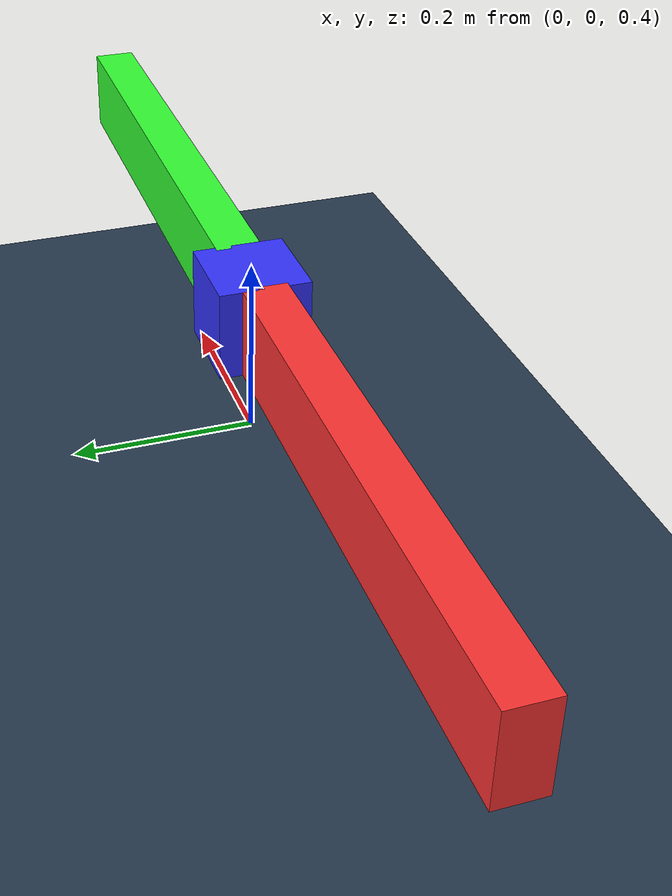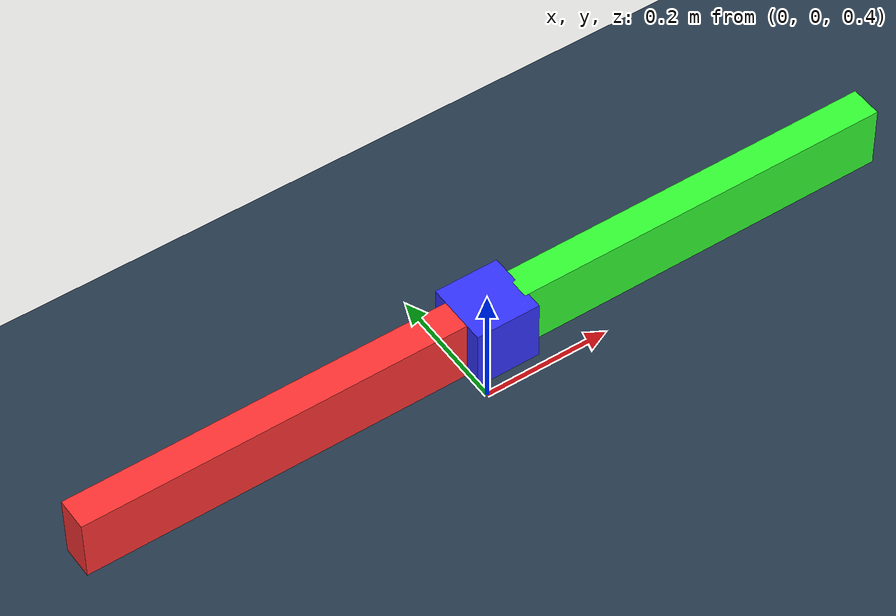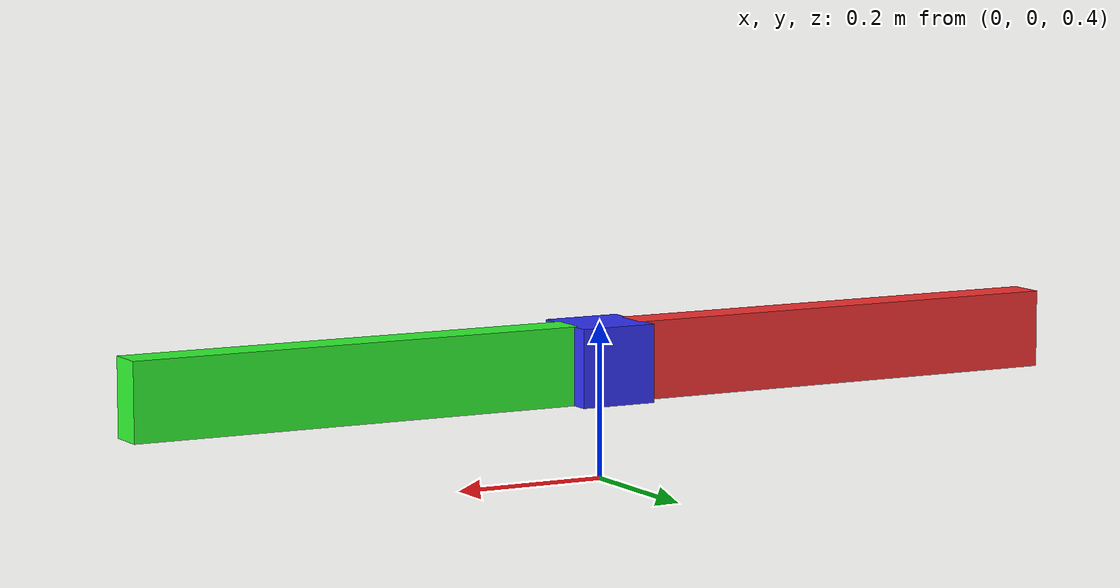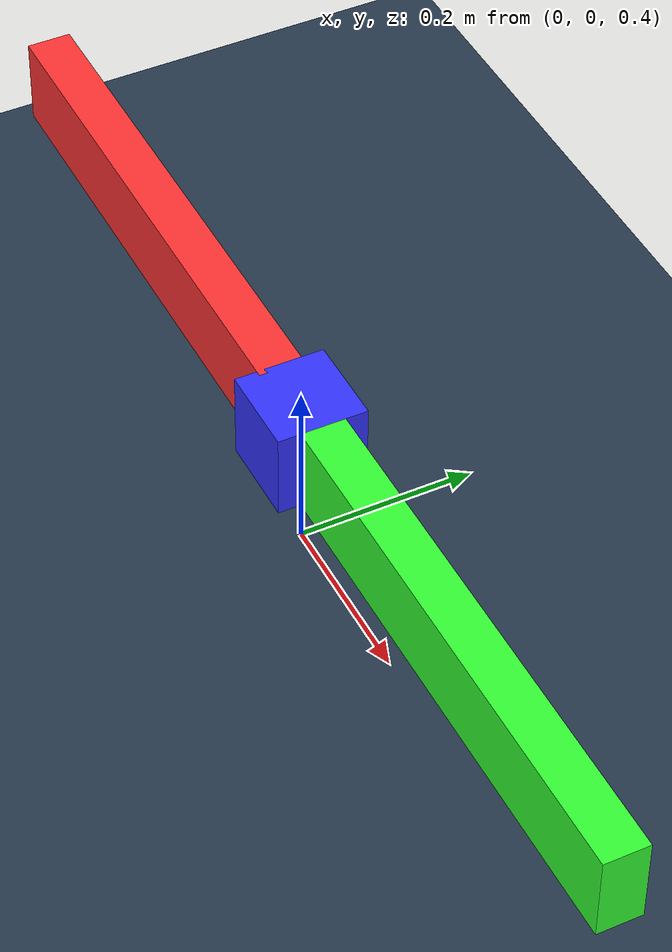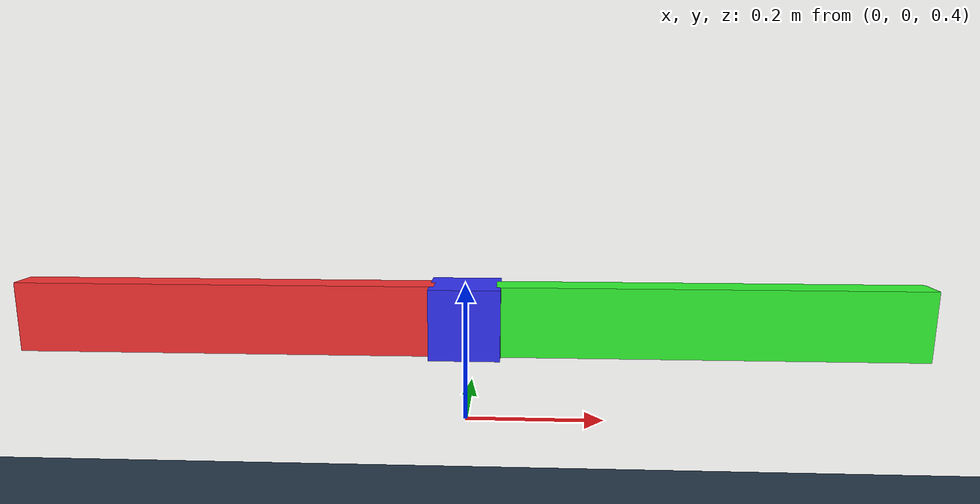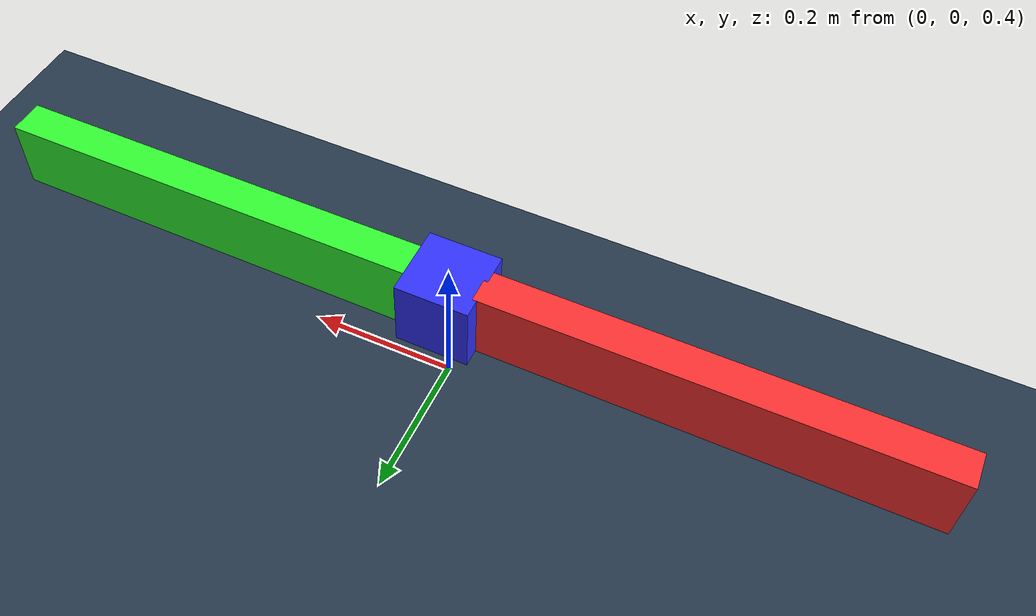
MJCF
<mujoco model="Snake">

    <compiler angle="degree" inertiafromgeom="true"/>

    <default>
        <motor ctrlrange="-1 1" ctrllimited="true"/>
    </default>

    <option timestep="1.0" integrator="RK4" gravity="0 0 0" tolerance="1e-6" />

    <asset>
        <texture name="texplane" type="2d" builtin="checker" rgb1="0.2 0.3 0.4" rgb2="0.1 0.15 0.2" width="512" height="512"/>
        <material name="matplane" reflectance="0.3" texture="texplane" texrepeat="1 1" texuniform="true"/>
        <material name="segment1" rgba="1.0 0.2 0.2 1"/>  <!-- Red. -->
        <material name="segment2" rgba="0.2 1.0 0.2 1"/>  <!-- Green. -->
        <material name="segment3" rgba="0.2 0.2 1.0 1"/>  <!-- Blue. -->
    </asset>

    <worldbody>
        <!-- Ground plane. -->
        <geom name="floor" pos="0 0 0" size="5 5 0.1" type="plane" material="matplane" friction="0.0 0.000 0.0000"/>

        <!-- Light source. -->
        <light directional="true" diffuse="0.8 0.8 0.8" specular="0.2 0.2 0.2" pos="0 0 5" dir="0 0 -1"/>

        <!-- Center body with inward-offset wings. -->
        <body name="center" pos="0 0 0.55">
            <!-- The free joint allows translation and rotation. -->
            <joint name="center_free" type="free" damping="0.0" stiffness="0" armature="0.0"/>

            <!-- Center block. -->
            <geom name="center_body" type="box" size="0.05 0.05 0.05" material="segment3" density="40000000"/>

            <!-- Left wing hinged at the edge. -->
            <body name="left_wing" pos="-0.344 0 0">
                <!-- Hinge at the center block's left edge. -->
                <joint name="joint_left" type="hinge" pos="0.344 0 0" axis="0 0 1" range="-60 60" damping="0.001" stiffness="0" armature="0.0"/>
                <geom name="left_wing_geom" type="box" size="0.3 0.025 0.05" material="segment1" density="100000"/>
            </body>

            <!-- Right wing hinged at the edge. -->
            <body name="right_wing" pos="0.344 0 0">
                <!-- Hinge at the center block's right edge. -->
                <joint name="joint_right" type="hinge" pos="-0.344 0 0" axis="0 0 1" range="-60 60" damping="0.001" stiffness="0" armature="0.0"/>
                <geom name="right_wing_geom" type="box" size="0.3 0.025 0.05" material="segment2" density="100000"/>
            </body>
        </body>
    </worldbody>

    <actuator>
        <!-- Joint motors. -->
        <motor name="motor_left" joint="joint_left" gear="0.2"/>
        <motor name="motor_right" joint="joint_right" gear="0.2"/>
    </actuator>

</mujoco>
